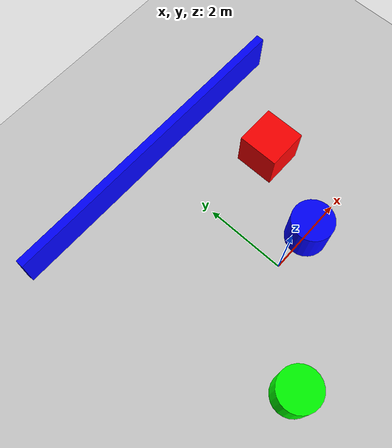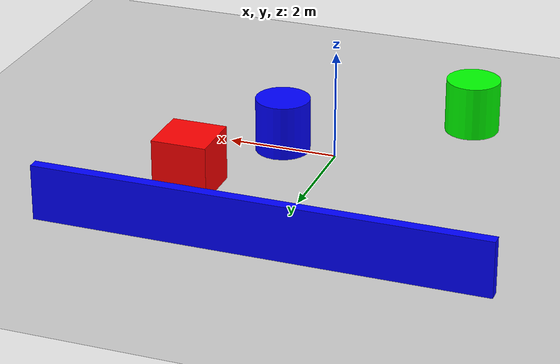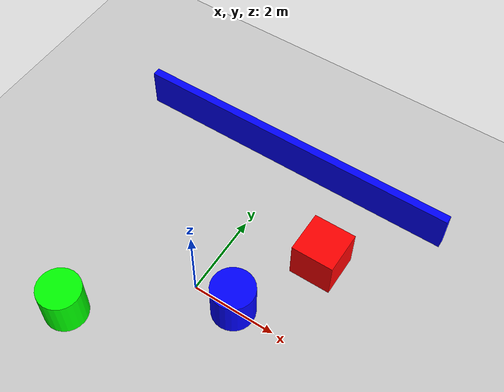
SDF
<?xml version="1.0" ?>
<sdf version="1.8">
  <world name="my_world">

      <plugin
        filename="gz-sim-physics-system"
        name="gz::sim::systems::Physics">
    </plugin>

    <plugin
        filename="gz-sim-scene-broadcaster-system"
        name="gz::sim::systems::SceneBroadcaster">
    </plugin>

    <plugin
      filename="gz-sim-user-commands-system"
      name="gz::sim::systems::UserCommands">
    </plugin>

  <plugin
      filename="gz-sim-sensors-system"
      name="gz::sim::systems::Sensors">
      <render_engine>ogre2</render_engine>
    </plugin>

    <!-- Add a sun for lighting -->
    <light name="sun" type="directional">
      <cast_shadows>true</cast_shadows>
      <pose>0 0 10 0 0 0</pose>
      <diffuse>0.8 0.8 0.8 1</diffuse>
      <specular>0.2 0.2 0.2 1</specular>
      <direction>-0.5 0.1 -0.9</direction>
    </light>

    <!-- Add ground plane -->
    <model name="ground_plane">
      <static>true</static>
      <link name="link">
        <collision name="collision">
          <geometry>
            <plane>
              <normal>0 0 1</normal>
              <size>100 100</size>
            </plane>
          </geometry>
        </collision>
        <visual name="visual">
          <geometry>
            <plane>
              <normal>0 0 1</normal>
              <size>100 100</size>
            </plane>
          </geometry>
          <material>
            <ambient>0.8 0.8 0.8 1</ambient>
            <diffuse>0.8 0.8 0.8 1</diffuse>
            <specular>0.8 0.8 0.8 1</specular>
          </material>
        </visual>
      </link>
    </model>

    <!-- Add box obstacle 1 -->
    <model name="box1">
      <static>true</static>
      <pose>2 2 0.5 0 0 0</pose>
      <link name="link">
        <collision name="collision">
          <geometry>
            <box>
              <size>1 1 1</size>
            </box>
          </geometry>
        </collision>
        <visual name="visual">
          <geometry>
            <box>
              <size>1 1 1</size>
            </box>
          </geometry>
          <material>
            <ambient>1 0 0 1</ambient>
            <diffuse>1 0 0 1</diffuse>
          </material>
        </visual>
      </link>
    </model>

    <!-- Add cylinder obstacle -->
    <model name="cylinder1">
      <static>true</static>
      <pose>-2 -2 0.5 0 0 0</pose>
      <link name="link">
        <collision name="collision">
          <geometry>
            <cylinder>
              <radius>0.5</radius>
              <length>1.0</length>
            </cylinder>
          </geometry>
        </collision>
        <visual name="visual">
          <geometry>
            <cylinder>
              <radius>0.5</radius>
              <length>1.0</length>
            </cylinder>
          </geometry>
          <material>
            <ambient>0 1 0 1</ambient>
            <diffuse>0 1 0 1</diffuse>
          </material>
        </visual>
      </link>
    </model>

    <!-- Add cylinder obstacle -->
    <model name="cylinder2">
      <static>true</static>
      <pose>1 0 0.5 0 0 0</pose>
      <link name="link">
        <collision name="collision">
          <geometry>
            <cylinder>
              <radius>0.5</radius>
              <length>1.0</length>
            </cylinder>
          </geometry>
        </collision>
        <visual name="visual">
          <geometry>
            <cylinder>
              <radius>0.5</radius>
              <length>1.0</length>
            </cylinder>
          </geometry>
          <material>
            <ambient>0 0 1 1</ambient>
            <diffuse>0 0 1 1</diffuse>
          </material>
        </visual>
      </link>
    </model>

    <!-- Add wall obstacle -->
    <model name="wall1">
      <static>true</static>
      <pose>0 4 0.5 0 0 0</pose>
      <link name="link">
        <collision name="collision">
          <geometry>
            <box>
              <size>8 0.2 1</size>
            </box>
          </geometry>
        </collision>
        <visual name="visual">
          <geometry>
            <box>
              <size>8 0.2 1</size>
            </box>
          </geometry>
          <material>
            <ambient>0 0 1 1</ambient>
            <diffuse>0 0 1 1</diffuse>
          </material>
        </visual>
      </link>
    </model>

    <!-- Physics settings -->
    <physics type="ode">
      <max_step_size>0.001</max_step_size>
      <real_time_factor>1.0</real_time_factor>
      <real_time_update_rate>1000.0</real_time_update_rate>
      <gravity>0 0 -9.8</gravity>
    </physics>

    <!-- Moving Left-->
        <plugin filename="gz-sim-triggered-publisher-system"
                name="gz::sim::systems::TriggeredPublisher">
            <input type="gz.msgs.Int32" topic="/keyboard/keypress">
                <match field="data">16777234</match>
            </input>
            <output type="gz.msgs.Twist" topic="/cmd_vel">
                linear: {x: 0.0}, angular: {z: 1}
            </output>
        </plugin>

        <!-- Moving Forward-->
        <plugin filename="gz-sim-triggered-publisher-system"
                name="gz::sim::systems::TriggeredPublisher">
            <input type="gz.msgs.Int32" topic="/keyboard/keypress">
                <match field="data">16777235</match>
            </input>
            <output type="gz.msgs.Twist" topic="/cmd_vel">
                linear: {x: 1}, angular: {z: 0}
            </output>
        </plugin>

        <!-- Moving Right-->
        <plugin filename="gz-sim-triggered-publisher-system"
                name="gz::sim::systems::TriggeredPublisher">
            <input type="gz.msgs.Int32" topic="/keyboard/keypress">
                <match field="data">16777236</match>
            </input>
            <output type="gz.msgs.Twist" topic="/cmd_vel">
                linear: {x: 0.0}, angular: {z: -1}
            </output>
        </plugin>

        <!-- Moving Backward-->
        <plugin filename="gz-sim-triggered-publisher-system"
                name="gz::sim::systems::TriggeredPublisher">
            <input type="gz.msgs.Int32" topic="/keyboard/keypress">
                <match field="data">16777237</match>
            </input>
            <output type="gz.msgs.Twist" topic="/cmd_vel">
                linear: {x: -1}, angular: {z: 0.0}
            </output>
        </plugin>
  </world>
</sdf>
